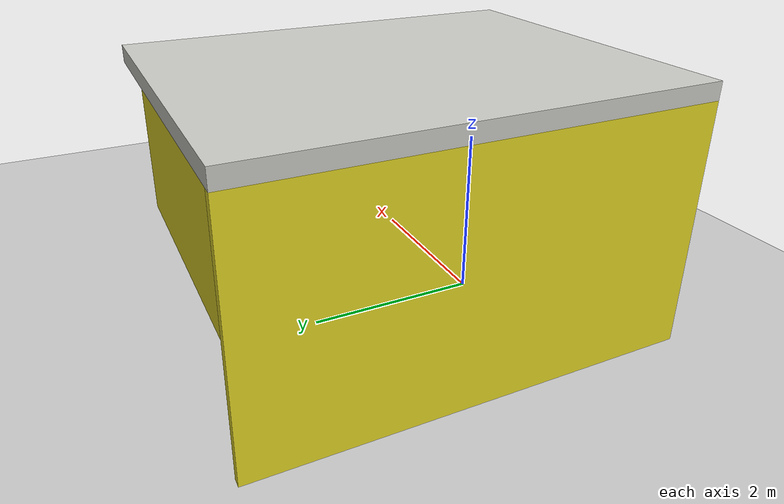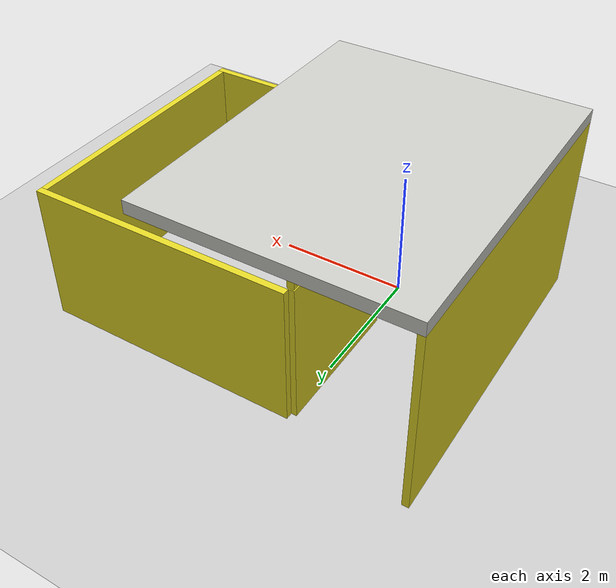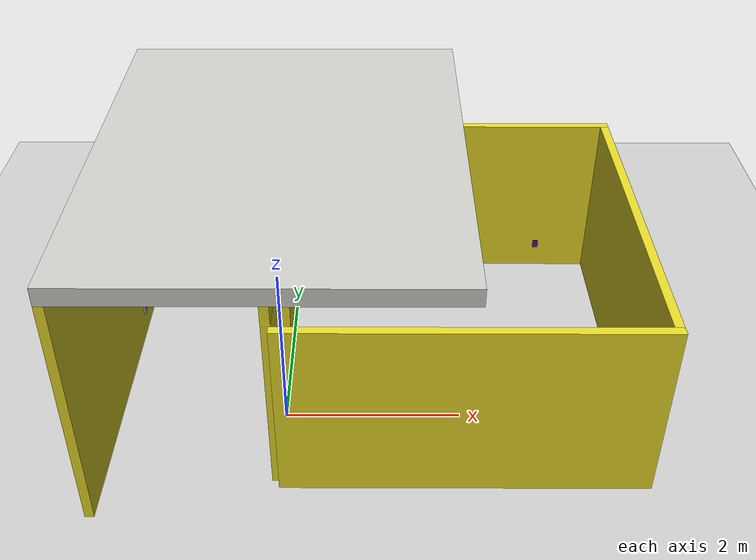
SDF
<sdf version="1.6">
 <world name="default">
  <include><uri>model://ground_plane</uri></include>
  <model name="walls">
   <static>true</static>
   <link name="wall_1">
    <collision name="wall_1_collision">
     <pose>-0.03 1.905 1.08 0 0 0</pose>
     <geometry><box><size>0.1 2.18 2.16</size></box></geometry>
    </collision>
    <visual name="wall_1_visual">
     <pose>-0.03 1.905 1.08 0 0 0</pose>
     <geometry><box><size>0.1 2.18 2.16</size></box></geometry>
     <material>
      <script><uri>file://media/materials/scripts/Gazebo.material</uri><name>Gazebo/Yellow</name></script>
     </material>
    </visual>
   </link>
   <link name="wall_2">
    <collision name="wall_2_collision">
     <pose>-0.03 -0.53 1.08 0 0 0</pose>
     <geometry><box><size>0.1 0.93 2.16</size></box></geometry>
    </collision>
    <visual name="wall_2_visual">
     <pose>-0.03 -0.53 1.08 0 0 0</pose>
     <geometry><box><size>0.1 0.93 2.16</size></box></geometry>
     <material>
      <script><uri>file://media/materials/scripts/Gazebo.material</uri><name>Gazebo/Yellow</name></script>
     </material>
    </visual>
   </link>
   <link name="wall_3">
    <collision name="wall_3_collision">
     <pose>2 3.05 1.08 0 0 0</pose>
     <geometry><box><size>4 0.1 2.16</size></box></geometry>
    </collision>
    <visual name="wall_3_visual">
     <pose>2 3.05 1.08 0 0 0</pose>
     <geometry><box><size>4 0.1 2.16</size></box></geometry>
     <material>
      <script><uri>file://media/materials/scripts/Gazebo.material</uri><name>Gazebo/Yellow</name></script>
     </material>
    </visual>
   </link>
   <link name="wall_4">
    <collision name="wall_4_collision">
     <pose>2 -1.05 1.08 0 0 0</pose>
     <geometry><box><size>4.0 0.1 2.16</size></box></geometry>
    </collision>
    <visual name="wall_4_visual">
     <pose>2 -1.05 1.08 0 0 0</pose>
     <geometry><box><size>4.0 0.1 2.16</size></box></geometry>
     <material>
      <script><uri>file://media/materials/scripts/Gazebo.material</uri><name>Gazebo/Yellow</name></script>
     </material>
    </visual>
   </link>
   <link name="wall_5">
    <collision name="wall_5_collision">
     <pose>3.95 1 1.08 0 0 0</pose>
     <geometry><box><size>0.1 4 2.16</size></box></geometry>
    </collision>
    <visual name="wall_5_visual">
     <pose>3.95 1 1.08 0 0 0</pose>
     <geometry><box><size>0.1 4 2.16</size></box></geometry>
     <material>
      <script><uri>file://media/materials/scripts/Gazebo.material</uri><name>Gazebo/Yellow</name></script>
     </material>
    </visual>
   </link>
   <link name="wall_6">
    <collision name="wall_6_collision">
     <pose>-1.95 1.0 1.4 0 0 0</pose>
     <geometry><box><size>0.1 5 2.8</size></box></geometry>
    </collision>
    <visual name="wall_6_visual">
     <pose>-1.95 1 1.4 0 0 0</pose>
     <geometry><box><size>0.1 5 2.8</size></box></geometry>
     <material>
      <script><uri>file://media/materials/scripts/Gazebo.material</uri><name>Gazebo/Yellow</name></script>
     </material>
    </visual>
   </link>
   <link name="wall_7">
    <collision name="wall_7_collision">
     <pose>-1.95 1.0 1.4 0 0 0</pose>
     <geometry><box><size>0.1 5 2.8</size></box></geometry>
    </collision>
    <visual name="wall_7_visual">
     <pose>0 1 2.9 0 0 0</pose>
     <geometry><box><size>4 5 0.2</size></box></geometry>
     <material>
      <script><uri>file://media/materials/scripts/Gazebo.material</uri><name>Gazebo/CeilingTiled</name></script>
     </material>
    </visual>
   </link>
   <link name="wall_8">
    <collision name="wall_8_collision">
     <pose>-0.03 1 2.49 0 0 0</pose>
     <geometry><box><size>0.1 4 0.62</size></box></geometry>
    </collision>
    <visual name="wall_8_visual">
     <pose>-0.03 1 2.49 0 0 0</pose>
     <geometry><box><size>0.1 4 0.62</size></box></geometry>
     <material>
      <script><uri>file://media/materials/scripts/Gazebo.material</uri><name>Gazebo/Yellow</name></script>
     </material>
    </visual>
   </link>
  </model>
  <model name="socket">
   <static>true</static>
   <link name="socket_1">
    <visual name="visual_socket_1">
     <pose>-1.88 1.5 0.4 1.57 0 1.57</pose>
     <geometry><mesh><uri>file://media/materials/obj/NEMA5-15R-Gray.obj</uri></mesh></geometry>
     <material>
      <script><uri>file://media/materials/scripts/Gazebo.material</uri><name>Gazebo/Grey</name></script>
     </material>
    </visual>
    <collision name="collision_socket_1">
     <pose>-1.88 1.5 0.4 1.57 0 1.57</pose>
     <geometry><mesh><uri>file://media/materials/obj/NEMA5-15R-Gray.obj</uri></mesh></geometry>
     <surface><friction><ode><mu>0.1</mu><mu2>0.1</mu2></ode></friction></surface>
    </collision>
   </link>
   <link name="socket_2">
    <visual name="visual_socket_2">
     <pose>0.8 2.996 0.4 1.5707963 0 0</pose>
     <geometry><mesh><uri>file://media/materials/obj/NEMA5-15R-Gray.obj</uri><scale>1 1 1</scale></mesh></geometry>
     <material>
      <script><uri>file://media/materials/scripts/Gazebo.material</uri><name>Gazebo/Blue</name></script>
     </material>
    </visual>
    <collision name="collision_socket_2">
     <pose>0.8 2.996 0.4 1.5707963 0 0</pose>
     <geometry><mesh><uri>file://media/materials/obj/NEMA5-15R-Gray.obj</uri><scale>1 1 1</scale></mesh></geometry>
     <surface><friction><ode><mu>0.1</mu><mu2>0.1</mu2></ode></friction></surface>
    </collision>
   </link>
   <link name="socket_3">
    <visual name="visual_socket_3">
     <pose>1.6 2.996 0.4 1.5707963 0 0</pose>
     <geometry>
      <mesh><uri>file://media/materials/obj/NEMA5-15R-Beige.obj</uri><scale>1 1 1</scale></mesh>
     </geometry>
     <material>
      <script><uri>file://media/materials/scripts/Gazebo.material</uri><name>Gazebo/FlatBlack</name></script>
     </material>
    </visual>
    <collision name="collision_socket_3">
     <pose>1.6 2.996 0.4 1.5707963 0 0</pose>
     <geometry><mesh><uri>file://media/materials/obj/NEMA5-15R-Gray.obj</uri><scale>1 1 1</scale></mesh></geometry>
     <surface><friction><ode><mu>0.1</mu><mu2>0.1</mu2></ode></friction></surface>
    </collision>
   </link>
   <link name="socket_4">
    <visual name="visual_socket_4">
     <pose>2.4 2.996 0.4 1.5707963 0 0</pose>
     <geometry>
      <mesh><uri>file://media/materials/obj/NEMA5-15-20R-White.obj</uri><scale>1 1 1</scale></mesh>
     </geometry>
     <material>
      <script><uri>file://media/materials/scripts/Gazebo.material</uri><name>Gazebo/Orange</name></script>
     </material>
    </visual>
    <collision name="collision_socket_4">
     <pose>2.4 2.996 0.4 1.5707963 0 0</pose>
     <geometry>
      <mesh><uri>file://media/materials/obj/NEMA5-15-20R-White.obj</uri><scale>1 1 1</scale></mesh>
     </geometry>
     <surface><friction><ode><mu>0.1</mu><mu2>0.1</mu2></ode></friction></surface>
    </collision>
   </link>
   <link name="socket_5">
    <visual name="visual_socket_5">
     <pose>3.2 2.996 0.4 1.5707963 0 0</pose>
     <geometry>
      <mesh><uri>file://media/materials/obj/NEMA5-15-20R-Zinc.obj</uri><scale>1 1 1</scale></mesh>
     </geometry>
     <material>
      <script><uri>file://media/materials/scripts/Gazebo.material</uri><name>Gazebo/Indigo</name></script>
     </material>
    </visual>
    <collision name="collision_socket_5">
     <pose>3.2 2.996 0.4 1.5707963 0 0</pose>
     <geometry>
      <mesh><uri>file://media/materials/obj/NEMA5-15-20R-Zinc.obj</uri><scale>1 1 1</scale></mesh>
     </geometry>
     <surface><friction><ode><mu>0.1</mu><mu2>0.1</mu2></ode></friction></surface>
    </collision>
   </link>
  </model>
  <light name="light0" type="point">
   <cast_shadows>0</cast_shadows>
   <diffuse>1 1 1 1</diffuse>
   <specular>0.1 0.1 0.1 1</specular>
   <pose>2 1 3 0 0 0</pose>
   <direction>0 0 -1</direction>
   <attenuation><range>10</range><linear>0</linear><constant>0.5</constant></attenuation>
  </light>
  <light name="light1" type="point">
   <cast_shadows>0</cast_shadows>
   <diffuse>1 1 1 1</diffuse>
   <specular>0.3 0.3 0.3 1</specular>
   <pose>-1.0 1 3 0 0 0</pose>
   <direction>0 0 -1</direction>
   <attenuation><range>10</range><linear>0</linear><constant>0.5</constant></attenuation>
  </light>
  <physics type="ode">
   <max_step_size>0.001</max_step_size>
   <real_time_factor>1</real_time_factor>
   <real_time_update_rate>1000</real_time_update_rate>
   <ode>
    <solver><type>quick</type><iters>1000</iters><sor>1.3</sor></solver>
    <constraints>
     <cfm>0</cfm>
     <erp>0.2</erp>
     <contact_max_correcting_vel>100</contact_max_correcting_vel>
     <contact_surface_layer>0.001</contact_surface_layer>
    </constraints>
   </ode>
  </physics>
 </world>
</sdf>
